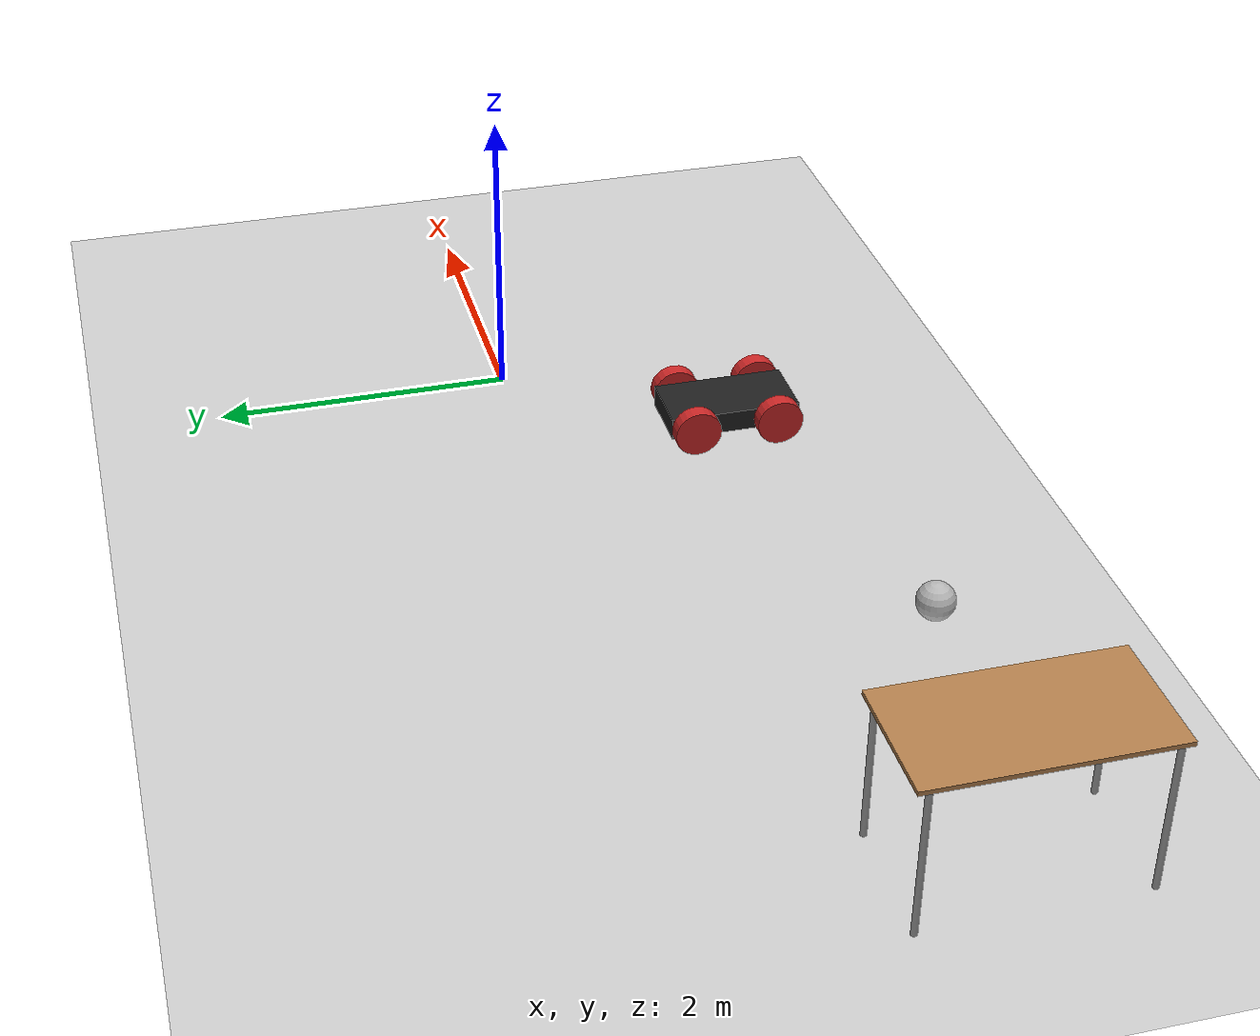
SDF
<sdf version="1.6">
 <world name="default">
  <model name="ground_plane">
   <static>1</static>
   <link name="link">
    <collision name="collision">
     <geometry><plane><normal>0 0 1</normal><size>100 100</size></plane></geometry>
     <surface>
      <contact><collide_bitmask>65535</collide_bitmask></contact>
      <friction><ode><mu>100</mu><mu2>50</mu2></ode></friction>
     </surface>
    </collision>
    <visual name="visual">
     <cast_shadows>0</cast_shadows>
     <geometry><plane><normal>0 0 1</normal><size>100 100</size></plane></geometry>
     <material>
      <script><uri>file://media/materials/scripts/gazebo.material</uri><name>Gazebo/Grey</name></script>
     </material>
    </visual>
   </link>
  </model>
  <model name="table_1">
   <static>1</static>
   <link name="link">
    <collision name="surface">
     <pose>0 0 1 0 -0 0</pose>
     <geometry><box><size>1.5 0.8 0.03</size></box></geometry>
     <surface><friction><ode><mu>0.6</mu><mu2>0.6</mu2></ode></friction></surface>
    </collision>
    <visual name="visual1">
     <pose>0 0 1 0 -0 0</pose>
     <geometry><box><size>1.5 0.8 0.03</size></box></geometry>
     <material>
      <script><uri>file://media/materials/scripts/gazebo.material</uri><name>Gazebo/Wood</name></script>
     </material>
    </visual>
    <collision name="front_left_leg">
     <pose>0.68 0.38 0.5 0 -0 0</pose>
     <geometry><cylinder><radius>0.02</radius><length>1</length></cylinder></geometry>
    </collision>
    <visual name="front_left_leg">
     <pose>0.68 0.38 0.5 0 -0 0</pose>
     <geometry><cylinder><radius>0.02</radius><length>1</length></cylinder></geometry>
     <material>
      <script><uri>file://media/materials/scripts/gazebo.material</uri><name>Gazebo/Grey</name></script>
     </material>
    </visual>
    <collision name="front_right_leg">
     <pose>0.68 -0.38 0.5 0 -0 0</pose>
     <geometry><cylinder><radius>0.02</radius><length>1</length></cylinder></geometry>
    </collision>
    <visual name="front_right_leg">
     <pose>0.68 -0.38 0.5 0 -0 0</pose>
     <geometry><cylinder><radius>0.02</radius><length>1</length></cylinder></geometry>
     <material>
      <script><uri>file://media/materials/scripts/gazebo.material</uri><name>Gazebo/Grey</name></script>
     </material>
    </visual>
    <collision name="back_right_leg">
     <pose>-0.68 -0.38 0.5 0 -0 0</pose>
     <geometry><cylinder><radius>0.02</radius><length>1</length></cylinder></geometry>
    </collision>
    <visual name="back_right_leg">
     <pose>-0.68 -0.38 0.5 0 -0 0</pose>
     <geometry><cylinder><radius>0.02</radius><length>1</length></cylinder></geometry>
     <material>
      <script><uri>file://media/materials/scripts/gazebo.material</uri><name>Gazebo/Grey</name></script>
     </material>
    </visual>
    <collision name="back_left_leg">
     <pose>-0.68 0.38 0.5 0 -0 0</pose>
     <geometry><cylinder><radius>0.02</radius><length>1</length></cylinder></geometry>
    </collision>
    <visual name="back_left_leg">
     <pose>-0.68 0.38 0.5 0 -0 0</pose>
     <geometry><cylinder><radius>0.02</radius><length>1</length></cylinder></geometry>
     <material>
      <script><uri>file://media/materials/scripts/gazebo.material</uri><name>Gazebo/Grey</name></script>
     </material>
    </visual>
   </link>
   <pose>-5.41591 -1.58634 0 0 0 -1.5695</pose>
  </model>
  <model name="frc2016_ball">
   <pose>-3.33994 -1.98228 0.127 0 -0 0</pose>
   <link name="link">
    <inertial>
     <mass>0.213</mass>
     <inertia>
      <ixx>0.00322667</ixx>
      <ixy>0</ixy>
      <ixz>0</ixz>
      <iyy>0.00322667</iyy>
      <iyz>0</iyz>
      <izz>0.00322667</izz>
     </inertia>
    </inertial>
    <visual name="visual"><geometry><sphere><radius>0.127</radius></sphere></geometry></visual>
    <collision name="collision">
     <geometry><sphere><radius>0.127</radius></sphere></geometry>
     <surface>
      <bounce><restitution_coefficient>0.15937</restitution_coefficient><threshold>0</threshold></bounce>
      <contact><ode><max_vel>100</max_vel><min_depth>0.001</min_depth></ode></contact>
     </surface>
    </collision>
   </link>
  </model>
  <model name="VehicleRobot_clone">
   <link name="link_0">
    <inertial>
     <mass>1</mass>
     <inertia>
      <ixx>0.166667</ixx>
      <ixy>0</ixy>
      <ixz>0</ixz>
      <iyy>0.166667</iyy>
      <iyz>0</iyz>
      <izz>0.166667</izz>
     </inertia>
    </inertial>
    <visual name="visual">
     <geometry><box><size>0.45 0.9 0.15</size></box></geometry>
     <material>
      <lighting>1</lighting>
      <script><uri>file://media/materials/scripts/gazebo.material</uri><name>Gazebo/Black</name></script>
     </material>
    </visual>
    <collision name="collision">
     <geometry><box><size>0.45 0.9 0.15</size></box></geometry>
     <surface>
      <friction>
       <ode><mu>1</mu><mu2>1</mu2><fdir1>0 0 0</fdir1><slip1>0</slip1><slip2>0</slip2></ode>
       <torsional>
        <coefficient>1</coefficient>
        <patch_radius>0</patch_radius>
        <surface_radius>0</surface_radius>
        <use_patch_radius>1</use_patch_radius>
        <ode><slip>0</slip></ode>
       </torsional>
      </friction>
      <bounce><restitution_coefficient>0</restitution_coefficient><threshold>1e+06</threshold></bounce>
      <contact>
       <collide_without_contact>0</collide_without_contact>
       <collide_without_contact_bitmask>1</collide_without_contact_bitmask>
       <collide_bitmask>1</collide_bitmask>
       <ode>
        <soft_cfm>0</soft_cfm>
        <soft_erp>0.2</soft_erp>
        <kp>1e+13</kp>
        <kd>1</kd>
        <max_vel>0.01</max_vel>
        <min_depth>0</min_depth>
       </ode>
       <bullet>
        <split_impulse>1</split_impulse>
        <split_impulse_penetration_threshold>-0.01</split_impulse_penetration_threshold>
        <soft_cfm>0</soft_cfm>
        <soft_erp>0.2</soft_erp>
        <kp>1e+13</kp>
        <kd>1</kd>
       </bullet>
      </contact>
     </surface>
    </collision>
   </link>
   <link name="link_1">
    <inertial>
     <mass>1</mass>
     <inertia><ixx>0.145833</ixx><ixy>0</ixy><ixz>0</ixz><iyy>0.145833</iyy><iyz>0</iyz><izz>0.125</izz></inertia>
    </inertial>
    <pose>0.275015 0.29 -0 0 1.5707 0</pose>
    <visual name="visual">
     <geometry><cylinder><radius>0.16</radius><length>0.1</length></cylinder></geometry>
     <material>
      <lighting>1</lighting>
      <script><uri>file://media/materials/scripts/gazebo.material</uri><name>Gazebo/Red</name></script>
     </material>
    </visual>
    <collision name="collision">
     <geometry><cylinder><radius>0.16</radius><length>0.1</length></cylinder></geometry>
     <surface>
      <friction>
       <ode><mu>1</mu><mu2>1</mu2><fdir1>0 0 0</fdir1><slip1>0</slip1><slip2>0</slip2></ode>
       <torsional>
        <coefficient>1</coefficient>
        <patch_radius>0</patch_radius>
        <surface_radius>0</surface_radius>
        <use_patch_radius>1</use_patch_radius>
        <ode><slip>0</slip></ode>
       </torsional>
      </friction>
      <bounce><restitution_coefficient>0</restitution_coefficient><threshold>1e+06</threshold></bounce>
      <contact>
       <collide_without_contact>0</collide_without_contact>
       <collide_without_contact_bitmask>1</collide_without_contact_bitmask>
       <collide_bitmask>1</collide_bitmask>
       <ode>
        <soft_cfm>0</soft_cfm>
        <soft_erp>0.2</soft_erp>
        <kp>1e+13</kp>
        <kd>1</kd>
        <max_vel>0.01</max_vel>
        <min_depth>0</min_depth>
       </ode>
       <bullet>
        <split_impulse>1</split_impulse>
        <split_impulse_penetration_threshold>-0.01</split_impulse_penetration_threshold>
        <soft_cfm>0</soft_cfm>
        <soft_erp>0.2</soft_erp>
        <kp>1e+13</kp>
        <kd>1</kd>
       </bullet>
      </contact>
     </surface>
    </collision>
   </link>
   <link name="link_1_clone">
    <inertial>
     <mass>1</mass>
     <inertia><ixx>0.145833</ixx><ixy>0</ixy><ixz>0</ixz><iyy>0.145833</iyy><iyz>0</iyz><izz>0.125</izz></inertia>
    </inertial>
    <pose>0.275015 -0.29 -0 0 1.5707 0</pose>
    <visual name="visual">
     <geometry><cylinder><radius>0.16</radius><length>0.1</length></cylinder></geometry>
     <material>
      <lighting>1</lighting>
      <script><uri>file://media/materials/scripts/gazebo.material</uri><name>Gazebo/Red</name></script>
     </material>
    </visual>
    <collision name="collision">
     <geometry><cylinder><radius>0.16</radius><length>0.1</length></cylinder></geometry>
     <surface>
      <friction>
       <ode><mu>1</mu><mu2>1</mu2><fdir1>0 0 0</fdir1><slip1>0</slip1><slip2>0</slip2></ode>
       <torsional>
        <coefficient>1</coefficient>
        <patch_radius>0</patch_radius>
        <surface_radius>0</surface_radius>
        <use_patch_radius>1</use_patch_radius>
        <ode><slip>0</slip></ode>
       </torsional>
      </friction>
      <bounce><restitution_coefficient>0</restitution_coefficient><threshold>1e+06</threshold></bounce>
      <contact>
       <collide_without_contact>0</collide_without_contact>
       <collide_without_contact_bitmask>1</collide_without_contact_bitmask>
       <collide_bitmask>1</collide_bitmask>
       <ode>
        <soft_cfm>0</soft_cfm>
        <soft_erp>0.2</soft_erp>
        <kp>1e+13</kp>
        <kd>1</kd>
        <max_vel>0.01</max_vel>
        <min_depth>0</min_depth>
       </ode>
       <bullet>
        <split_impulse>1</split_impulse>
        <split_impulse_penetration_threshold>-0.01</split_impulse_penetration_threshold>
        <soft_cfm>0</soft_cfm>
        <soft_erp>0.2</soft_erp>
        <kp>1e+13</kp>
        <kd>1</kd>
       </bullet>
      </contact>
     </surface>
    </collision>
   </link>
   <link name="link_1_clone_0">
    <inertial>
     <mass>1</mass>
     <inertia><ixx>0.145833</ixx><ixy>0</ixy><ixz>0</ixz><iyy>0.145833</iyy><iyz>0</iyz><izz>0.125</izz></inertia>
    </inertial>
    <pose>-0.275015 0.29 -0 0 1.5707 0</pose>
    <visual name="visual">
     <geometry><cylinder><radius>0.16</radius><length>0.1</length></cylinder></geometry>
     <material>
      <lighting>1</lighting>
      <script><uri>file://media/materials/scripts/gazebo.material</uri><name>Gazebo/Red</name></script>
     </material>
    </visual>
    <collision name="collision">
     <geometry><cylinder><radius>0.16</radius><length>0.1</length></cylinder></geometry>
     <surface>
      <friction>
       <ode><mu>1</mu><mu2>1</mu2><fdir1>0 0 0</fdir1><slip1>0</slip1><slip2>0</slip2></ode>
       <torsional>
        <coefficient>1</coefficient>
        <patch_radius>0</patch_radius>
        <surface_radius>0</surface_radius>
        <use_patch_radius>1</use_patch_radius>
        <ode><slip>0</slip></ode>
       </torsional>
      </friction>
      <bounce><restitution_coefficient>0</restitution_coefficient><threshold>1e+06</threshold></bounce>
      <contact>
       <collide_without_contact>0</collide_without_contact>
       <collide_without_contact_bitmask>1</collide_without_contact_bitmask>
       <collide_bitmask>1</collide_bitmask>
       <ode>
        <soft_cfm>0</soft_cfm>
        <soft_erp>0.2</soft_erp>
        <kp>1e+13</kp>
        <kd>1</kd>
        <max_vel>0.01</max_vel>
        <min_depth>0</min_depth>
       </ode>
       <bullet>
        <split_impulse>1</split_impulse>
        <split_impulse_penetration_threshold>-0.01</split_impulse_penetration_threshold>
        <soft_cfm>0</soft_cfm>
        <soft_erp>0.2</soft_erp>
        <kp>1e+13</kp>
        <kd>1</kd>
       </bullet>
      </contact>
     </surface>
    </collision>
   </link>
   <link name="link_1_clone_1">
    <inertial>
     <mass>1</mass>
     <inertia><ixx>0.145833</ixx><ixy>0</ixy><ixz>0</ixz><iyy>0.145833</iyy><iyz>0</iyz><izz>0.125</izz></inertia>
    </inertial>
    <pose>-0.275015 -0.29 -0 0 1.5707 0</pose>
    <visual name="visual">
     <geometry><cylinder><radius>0.16</radius><length>0.1</length></cylinder></geometry>
     <material>
      <lighting>1</lighting>
      <script><uri>file://media/materials/scripts/gazebo.material</uri><name>Gazebo/Red</name></script>
     </material>
    </visual>
    <collision name="collision">
     <geometry><cylinder><radius>0.16</radius><length>0.1</length></cylinder></geometry>
     <surface>
      <friction>
       <ode><mu>1</mu><mu2>1</mu2><fdir1>0 0 0</fdir1><slip1>0</slip1><slip2>0</slip2></ode>
       <torsional>
        <coefficient>1</coefficient>
        <patch_radius>0</patch_radius>
        <surface_radius>0</surface_radius>
        <use_patch_radius>1</use_patch_radius>
        <ode><slip>0</slip></ode>
       </torsional>
      </friction>
      <bounce><restitution_coefficient>0</restitution_coefficient><threshold>1e+06</threshold></bounce>
      <contact>
       <collide_without_contact>0</collide_without_contact>
       <collide_without_contact_bitmask>1</collide_without_contact_bitmask>
       <collide_bitmask>1</collide_bitmask>
       <ode>
        <soft_cfm>0</soft_cfm>
        <soft_erp>0.2</soft_erp>
        <kp>1e+13</kp>
        <kd>1</kd>
        <max_vel>0.01</max_vel>
        <min_depth>0</min_depth>
       </ode>
       <bullet>
        <split_impulse>1</split_impulse>
        <split_impulse_penetration_threshold>-0.01</split_impulse_penetration_threshold>
        <soft_cfm>0</soft_cfm>
        <soft_erp>0.2</soft_erp>
        <kp>1e+13</kp>
        <kd>1</kd>
       </bullet>
      </contact>
     </surface>
    </collision>
   </link>
   <joint name="link_0_JOINT_0" type="revolute">
    <parent>link_0</parent>
    <child>link_1</child>
    <axis>
     <xyz>0 0.01 1</xyz>
     <use_parent_model_frame>0</use_parent_model_frame>
     <limit>
      <lower>-1.79769e+308</lower>
      <upper>1.79769e+308</upper>
      <effort>-1</effort>
      <velocity>-1</velocity>
     </limit>
     <dynamics>
      <spring_reference>0</spring_reference>
      <spring_stiffness>0</spring_stiffness>
      <damping>0</damping>
     </dynamics>
    </axis>
    <physics>
     <ode><limit><cfm>0</cfm><erp>0.2</erp></limit><suspension><cfm>0</cfm><erp>0.2</erp></suspension></ode>
    </physics>
   </joint>
   <joint name="link_0_JOINT_1" type="revolute">
    <parent>link_0</parent>
    <child>link_1_clone</child>
    <axis>
     <xyz>0 0 1</xyz>
     <use_parent_model_frame>0</use_parent_model_frame>
     <limit>
      <lower>-1.79769e+308</lower>
      <upper>1.79769e+308</upper>
      <effort>-1</effort>
      <velocity>-1</velocity>
     </limit>
     <dynamics>
      <spring_reference>0</spring_reference>
      <spring_stiffness>0</spring_stiffness>
      <damping>0</damping>
     </dynamics>
    </axis>
    <physics>
     <ode><limit><cfm>0</cfm><erp>0.2</erp></limit><suspension><cfm>0</cfm><erp>0.2</erp></suspension></ode>
    </physics>
   </joint>
   <joint name="link_0_JOINT_2" type="revolute">
    <parent>link_0</parent>
    <child>link_1_clone_0</child>
    <axis>
     <xyz>0 0 1</xyz>
     <use_parent_model_frame>0</use_parent_model_frame>
     <limit>
      <lower>-1.79769e+308</lower>
      <upper>1.79769e+308</upper>
      <effort>-1</effort>
      <velocity>-1</velocity>
     </limit>
     <dynamics>
      <spring_reference>0</spring_reference>
      <spring_stiffness>0</spring_stiffness>
      <damping>0</damping>
     </dynamics>
    </axis>
    <physics>
     <ode><limit><cfm>0</cfm><erp>0.2</erp></limit><suspension><cfm>0</cfm><erp>0.2</erp></suspension></ode>
    </physics>
   </joint>
   <joint name="link_0_JOINT_3" type="revolute">
    <parent>link_0</parent>
    <child>link_1_clone_1</child>
    <axis>
     <xyz>0 0 1</xyz>
     <use_parent_model_frame>0</use_parent_model_frame>
     <limit>
      <lower>-1.79769e+308</lower>
      <upper>1.79769e+308</upper>
      <effort>-1</effort>
      <velocity>-1</velocity>
     </limit>
     <dynamics>
      <spring_reference>0</spring_reference>
      <spring_stiffness>0</spring_stiffness>
      <damping>0</damping>
     </dynamics>
    </axis>
    <physics>
     <ode><limit><cfm>0</cfm><erp>0.2</erp></limit><suspension><cfm>0</cfm><erp>0.2</erp></suspension></ode>
    </physics>
   </joint>
   <static>0</static>
   <pose>-0.938156 -1.37882 0.16 0 -0 0</pose>
  </model>
 </world>
</sdf>
